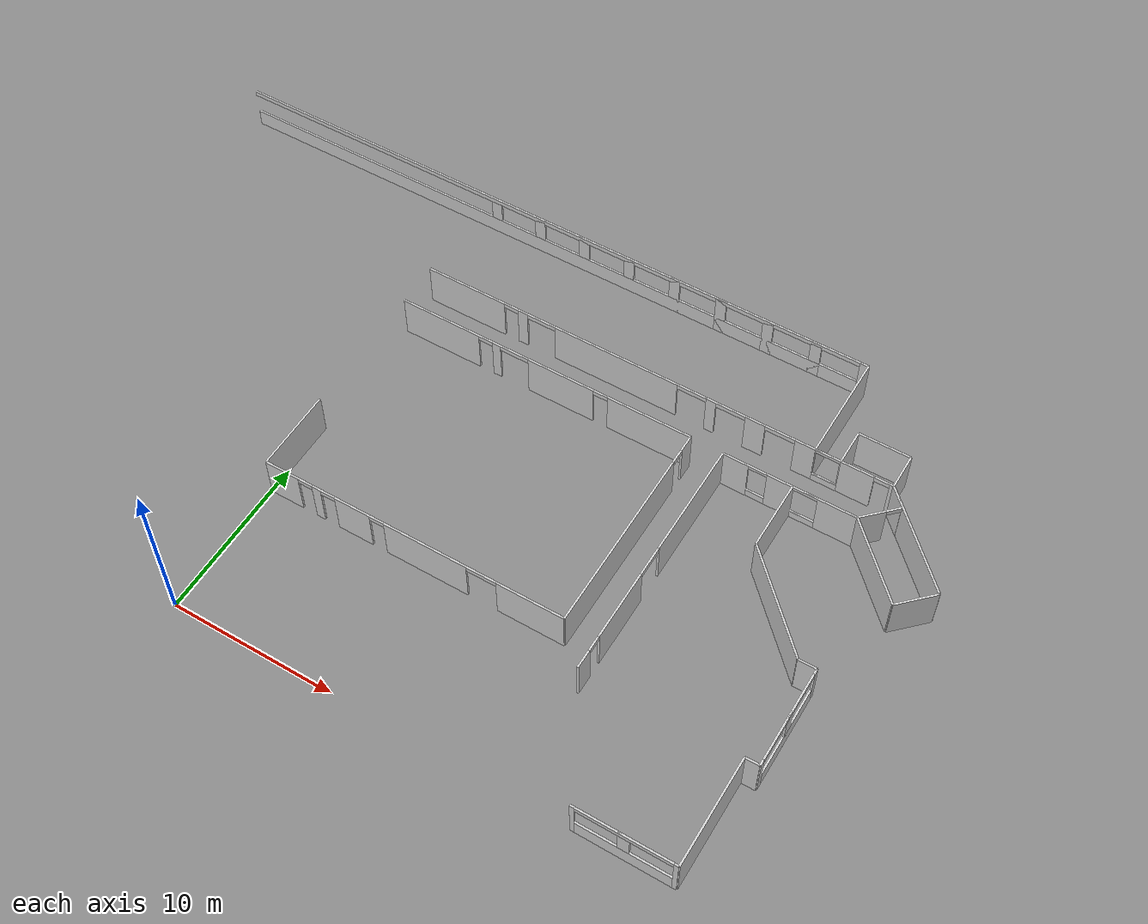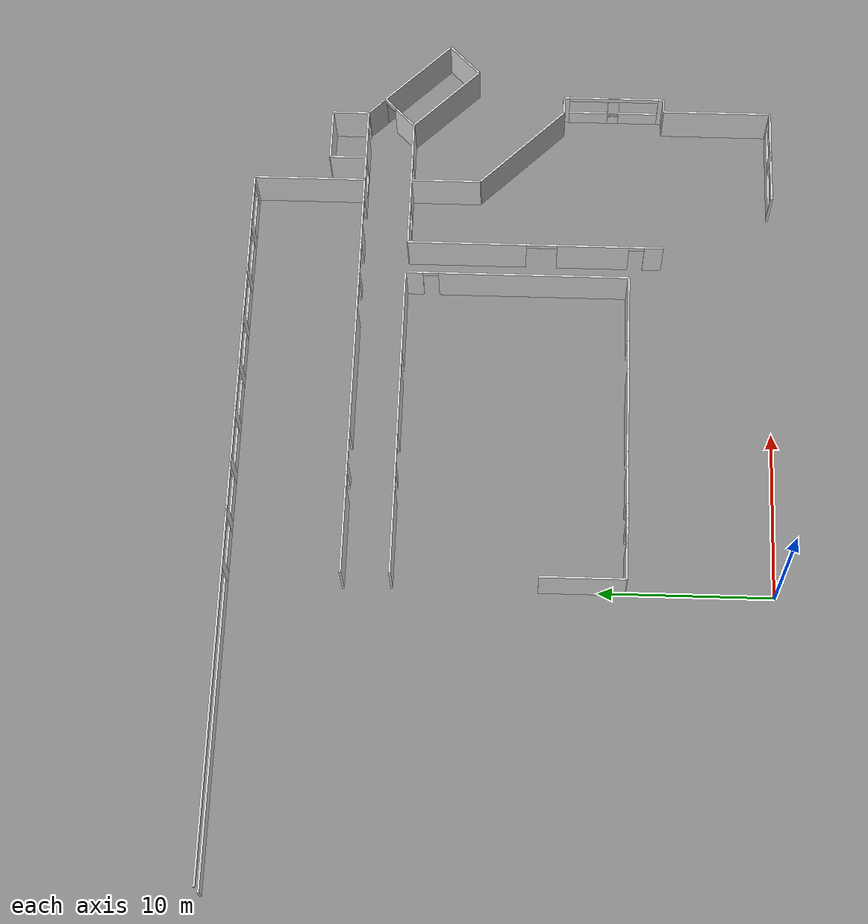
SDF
<sdf version="1.10">
 <model name="fourth_floor_walls">
  <static>true</static>
  <link name="exteriors_018_windows_block_lower_strip">
   <pose>3.3877 31.0451 0.5461 0 0 0.000000</pose>
   <collision name="exteriors_018_windows_block_lower_strip_collision">
    <geometry><box><size>41.9926 0.1199 1.0922</size></box></geometry>
   </collision>
   <visual name="exteriors_018_windows_block_lower_strip_visual">
    <geometry><box><size>41.9926 0.1199 1.0922</size></box></geometry>
    <material><ambient>0.82 0.82 0.82 1</ambient><diffuse>0.82 0.82 0.82 1</diffuse></material>
   </visual>
  </link>
  <link name="exteriors_018_windows_block_upper_strip">
   <pose>3.3877 31.0451 2.5942 0 0 0.000000</pose>
   <collision name="exteriors_018_windows_block_upper_strip_collision">
    <geometry><box><size>41.9926 0.1199 0.3117</size></box></geometry>
   </collision>
   <visual name="exteriors_018_windows_block_upper_strip_visual">
    <geometry><box><size>41.9926 0.1199 0.3117</size></box></geometry>
    <material><ambient>0.82 0.82 0.82 1</ambient><diffuse>0.82 0.82 0.82 1</diffuse></material>
   </visual>
  </link>
  <link name="exteriors_018_windows_block_post_6">
   <pose>0.3397 31.0451 1.3750 0 0 0.000000</pose>
   <collision name="exteriors_018_windows_block_post_6_collision">
    <geometry><box><size>0.6794 0.1199 2.7501</size></box></geometry>
   </collision>
   <visual name="exteriors_018_windows_block_post_6_visual">
    <geometry><box><size>0.6794 0.1199 2.7501</size></box></geometry>
    <material><ambient>0.82 0.82 0.82 1</ambient><diffuse>0.82 0.82 0.82 1</diffuse></material>
   </visual>
  </link>
  <link name="exteriors_018_windows_block_post_7">
   <pose>3.3877 31.0451 1.3750 0 0 0.000000</pose>
   <collision name="exteriors_018_windows_block_post_7_collision">
    <geometry><box><size>0.6794 0.1199 2.7501</size></box></geometry>
   </collision>
   <visual name="exteriors_018_windows_block_post_7_visual">
    <geometry><box><size>0.6794 0.1199 2.7501</size></box></geometry>
    <material><ambient>0.82 0.82 0.82 1</ambient><diffuse>0.82 0.82 0.82 1</diffuse></material>
   </visual>
  </link>
  <link name="exteriors_018_windows_block_post_8">
   <pose>6.4357 31.0451 1.3750 0 0 0.000000</pose>
   <collision name="exteriors_018_windows_block_post_8_collision">
    <geometry><box><size>0.6794 0.1199 2.7501</size></box></geometry>
   </collision>
   <visual name="exteriors_018_windows_block_post_8_visual">
    <geometry><box><size>0.6794 0.1199 2.7501</size></box></geometry>
    <material><ambient>0.82 0.82 0.82 1</ambient><diffuse>0.82 0.82 0.82 1</diffuse></material>
   </visual>
  </link>
  <link name="exteriors_018_windows_block_post_9">
   <pose>9.4837 31.0451 1.3750 0 0 0.000000</pose>
   <collision name="exteriors_018_windows_block_post_9_collision">
    <geometry><box><size>0.6794 0.1199 2.7501</size></box></geometry>
   </collision>
   <visual name="exteriors_018_windows_block_post_9_visual">
    <geometry><box><size>0.6794 0.1199 2.7501</size></box></geometry>
    <material><ambient>0.82 0.82 0.82 1</ambient><diffuse>0.82 0.82 0.82 1</diffuse></material>
   </visual>
  </link>
  <link name="exteriors_018_windows_block_post_10">
   <pose>12.5317 31.0451 1.3750 0 0 0.000000</pose>
   <collision name="exteriors_018_windows_block_post_10_collision">
    <geometry><box><size>0.6794 0.1199 2.7501</size></box></geometry>
   </collision>
   <visual name="exteriors_018_windows_block_post_10_visual">
    <geometry><box><size>0.6794 0.1199 2.7501</size></box></geometry>
    <material><ambient>0.82 0.82 0.82 1</ambient><diffuse>0.82 0.82 0.82 1</diffuse></material>
   </visual>
  </link>
  <link name="exteriors_018_windows_block_post_11">
   <pose>15.5797 31.0451 1.3750 0 0 0.000000</pose>
   <collision name="exteriors_018_windows_block_post_11_collision">
    <geometry><box><size>0.6794 0.1199 2.7501</size></box></geometry>
   </collision>
   <visual name="exteriors_018_windows_block_post_11_visual">
    <geometry><box><size>0.6794 0.1199 2.7501</size></box></geometry>
    <material><ambient>0.82 0.82 0.82 1</ambient><diffuse>0.82 0.82 0.82 1</diffuse></material>
   </visual>
  </link>
  <link name="exteriors_018_windows_block_post_12">
   <pose>18.6277 31.0451 1.3750 0 0 0.000000</pose>
   <collision name="exteriors_018_windows_block_post_12_collision">
    <geometry><box><size>0.6794 0.1199 2.7501</size></box></geometry>
   </collision>
   <visual name="exteriors_018_windows_block_post_12_visual">
    <geometry><box><size>0.6794 0.1199 2.7501</size></box></geometry>
    <material><ambient>0.82 0.82 0.82 1</ambient><diffuse>0.82 0.82 0.82 1</diffuse></material>
   </visual>
  </link>
  <link name="exteriors_018_windows_block_post_13">
   <pose>21.6757 31.0451 1.3750 0 0 0.000000</pose>
   <collision name="exteriors_018_windows_block_post_13_collision">
    <geometry><box><size>0.6794 0.1199 2.7501</size></box></geometry>
   </collision>
   <visual name="exteriors_018_windows_block_post_13_visual">
    <geometry><box><size>0.6794 0.1199 2.7501</size></box></geometry>
    <material><ambient>0.82 0.82 0.82 1</ambient><diffuse>0.82 0.82 0.82 1</diffuse></material>
   </visual>
  </link>
  <link name="exteriors_019_solid">
   <pose>24.6380 31.0451 1.3750 0 0 0.000000</pose>
   <collision name="exteriors_019_solid_collision">
    <geometry><box><size>0.5080 0.1199 2.7501</size></box></geometry>
   </collision>
   <visual name="exteriors_019_solid_visual">
    <geometry><box><size>0.5080 0.1199 2.7501</size></box></geometry>
    <material><ambient>0.82 0.82 0.82 1</ambient><diffuse>0.82 0.82 0.82 1</diffuse></material>
   </visual>
  </link>
  <link name="exteriors_021_solid">
   <pose>24.8920 27.7431 1.3750 0 0 4.712389</pose>
   <collision name="exteriors_021_solid_collision">
    <geometry><box><size>6.6040 0.1199 2.7501</size></box></geometry>
   </collision>
   <visual name="exteriors_021_solid_visual">
    <geometry><box><size>6.6040 0.1199 2.7501</size></box></geometry>
    <material><ambient>0.82 0.82 0.82 1</ambient><diffuse>0.82 0.82 0.82 1</diffuse></material>
   </visual>
  </link>
  <link name="exteriors_023_windows_block_lower_strip">
   <pose>25.6540 24.4412 0.2540 0 0 0.000000</pose>
   <collision name="exteriors_023_windows_block_lower_strip_collision">
    <geometry><box><size>1.5240 0.1199 0.5080</size></box></geometry>
   </collision>
   <visual name="exteriors_023_windows_block_lower_strip_visual">
    <geometry><box><size>1.5240 0.1199 0.5080</size></box></geometry>
    <material><ambient>0.82 0.82 0.82 1</ambient><diffuse>0.82 0.82 0.82 1</diffuse></material>
   </visual>
  </link>
  <link name="exteriors_023_windows_block_upper_strip">
   <pose>25.6540 24.4412 2.6450 0 0 0.000000</pose>
   <collision name="exteriors_023_windows_block_upper_strip_collision">
    <geometry><box><size>1.5240 0.1199 0.2101</size></box></geometry>
   </collision>
   <visual name="exteriors_023_windows_block_upper_strip_visual">
    <geometry><box><size>1.5240 0.1199 0.2101</size></box></geometry>
    <material><ambient>0.82 0.82 0.82 1</ambient><diffuse>0.82 0.82 0.82 1</diffuse></material>
   </visual>
  </link>
  <link name="exteriors_025_solid">
   <pose>26.4160 25.5206 1.3750 0 0 1.570796</pose>
   <collision name="exteriors_025_solid_collision">
    <geometry><box><size>2.1590 0.1199 2.7501</size></box></geometry>
   </collision>
   <visual name="exteriors_025_solid_visual">
    <geometry><box><size>2.1590 0.1199 2.7501</size></box></geometry>
    <material><ambient>0.82 0.82 0.82 1</ambient><diffuse>0.82 0.82 0.82 1</diffuse></material>
   </visual>
  </link>
  <link name="exteriors_027_solid">
   <pose>27.9781 26.6001 1.3750 0 0 0.000000</pose>
   <collision name="exteriors_027_solid_collision">
    <geometry><box><size>3.1242 0.1199 2.7501</size></box></geometry>
   </collision>
   <visual name="exteriors_027_solid_visual">
    <geometry><box><size>3.1242 0.1199 2.7501</size></box></geometry>
    <material><ambient>0.82 0.82 0.82 1</ambient><diffuse>0.82 0.82 0.82 1</diffuse></material>
   </visual>
  </link>
  <link name="exteriors_029_solid">
   <pose>29.5402 25.5206 1.3750 0 0 4.712389</pose>
   <collision name="exteriors_029_solid_collision">
    <geometry><box><size>2.1590 0.1199 2.7501</size></box></geometry>
   </collision>
   <visual name="exteriors_029_solid_visual">
    <geometry><box><size>2.1590 0.1199 2.7501</size></box></geometry>
    <material><ambient>0.82 0.82 0.82 1</ambient><diffuse>0.82 0.82 0.82 1</diffuse></material>
   </visual>
  </link>
  <link name="exteriors_031_solid">
   <pose>31.9649 22.0165 1.3750 0 0 5.497787</pose>
   <collision name="exteriors_031_solid_collision">
    <geometry><box><size>6.8580 0.1199 2.7501</size></box></geometry>
   </collision>
   <visual name="exteriors_031_solid_visual">
    <geometry><box><size>6.8580 0.1199 2.7501</size></box></geometry>
    <material><ambient>0.82 0.82 0.82 1</ambient><diffuse>0.82 0.82 0.82 1</diffuse></material>
   </visual>
  </link>
  <link name="exteriors_033_solid">
   <pose>33.4915 18.6938 1.3750 0 0 3.926991</pose>
   <collision name="exteriors_033_solid_collision">
    <geometry><box><size>2.5400 0.1199 2.7501</size></box></geometry>
   </collision>
   <visual name="exteriors_033_solid_visual">
    <geometry><box><size>2.5400 0.1199 2.7501</size></box></geometry>
    <material><ambient>0.82 0.82 0.82 1</ambient><diffuse>0.82 0.82 0.82 1</diffuse></material>
   </visual>
  </link>
  <link name="exteriors_035_solid">
   <pose>30.6717 19.7175 1.3750 0 0 2.356194</pose>
   <collision name="exteriors_035_solid_collision">
    <geometry><box><size>5.4356 0.1199 2.7501</size></box></geometry>
   </collision>
   <visual name="exteriors_035_solid_visual">
    <geometry><box><size>5.4356 0.1199 2.7501</size></box></geometry>
    <material><ambient>0.82 0.82 0.82 1</ambient><diffuse>0.82 0.82 0.82 1</diffuse></material>
   </visual>
  </link>
  <link name="exteriors_037_solid">
   <pose>27.6069 21.6393 1.3750 0 0 3.141593</pose>
   <collision name="exteriors_037_solid_collision">
    <geometry><box><size>2.2860 0.1199 2.7501</size></box></geometry>
   </collision>
   <visual name="exteriors_037_solid_visual">
    <geometry><box><size>2.2860 0.1199 2.7501</size></box></geometry>
    <material><ambient>0.82 0.82 0.82 1</ambient><diffuse>0.82 0.82 0.82 1</diffuse></material>
   </visual>
  </link>
  <link name="exteriors_038_windows_block_lower_strip">
   <pose>25.7019 21.6393 0.2540 0 0 3.141593</pose>
   <collision name="exteriors_038_windows_block_lower_strip_collision">
    <geometry><box><size>1.5240 0.1199 0.5080</size></box></geometry>
   </collision>
   <visual name="exteriors_038_windows_block_lower_strip_visual">
    <geometry><box><size>1.5240 0.1199 0.5080</size></box></geometry>
    <material><ambient>0.82 0.82 0.82 1</ambient><diffuse>0.82 0.82 0.82 1</diffuse></material>
   </visual>
  </link>
  <link name="exteriors_038_windows_block_upper_strip">
   <pose>25.7019 21.6393 2.6450 0 0 3.141593</pose>
   <collision name="exteriors_038_windows_block_upper_strip_collision">
    <geometry><box><size>1.5240 0.1199 0.2101</size></box></geometry>
   </collision>
   <visual name="exteriors_038_windows_block_upper_strip_visual">
    <geometry><box><size>1.5240 0.1199 0.2101</size></box></geometry>
    <material><ambient>0.82 0.82 0.82 1</ambient><diffuse>0.82 0.82 0.82 1</diffuse></material>
   </visual>
  </link>
  <link name="exteriors_040_solid">
   <pose>24.9399 19.5565 1.3750 0 0 4.712389</pose>
   <collision name="exteriors_040_solid_collision">
    <geometry><box><size>4.1656 0.1199 2.7501</size></box></geometry>
   </collision>
   <visual name="exteriors_040_solid_visual">
    <geometry><box><size>4.1656 0.1199 2.7501</size></box></geometry>
    <material><ambient>0.82 0.82 0.82 1</ambient><diffuse>0.82 0.82 0.82 1</diffuse></material>
   </visual>
  </link>
  <link name="exteriors_042_solid">
   <pose>27.4185 14.9952 1.3750 0 0 5.497787</pose>
   <collision name="exteriors_042_solid_collision">
    <geometry><box><size>7.0104 0.1199 2.7501</size></box></geometry>
   </collision>
   <visual name="exteriors_042_solid_visual">
    <geometry><box><size>7.0104 0.1199 2.7501</size></box></geometry>
    <material><ambient>0.82 0.82 0.82 1</ambient><diffuse>0.82 0.82 0.82 1</diffuse></material>
   </visual>
  </link>
  <link name="exteriors_044_solid">
   <pose>30.4304 12.5166 1.3750 0 0 0.000000</pose>
   <collision name="exteriors_044_solid_collision">
    <geometry><box><size>1.0668 0.1199 2.7501</size></box></geometry>
   </collision>
   <visual name="exteriors_044_solid_visual">
    <geometry><box><size>1.0668 0.1199 2.7501</size></box></geometry>
    <material><ambient>0.82 0.82 0.82 1</ambient><diffuse>0.82 0.82 0.82 1</diffuse></material>
   </visual>
  </link>
  <link name="exteriors_046_solid">
   <pose>30.9638 12.3515 1.3750 0 0 4.712389</pose>
   <collision name="exteriors_046_solid_collision">
    <geometry><box><size>0.3302 0.1199 2.7501</size></box></geometry>
   </collision>
   <visual name="exteriors_046_solid_visual">
    <geometry><box><size>0.3302 0.1199 2.7501</size></box></geometry>
    <material><ambient>0.82 0.82 0.82 1</ambient><diffuse>0.82 0.82 0.82 1</diffuse></material>
   </visual>
  </link>
  <link name="exteriors_047_windows_block_lower_strip">
   <pose>30.9638 9.4781 0.5461 0 0 4.712389</pose>
   <collision name="exteriors_047_windows_block_lower_strip_collision">
    <geometry><box><size>5.4165 0.1199 1.0922</size></box></geometry>
   </collision>
   <visual name="exteriors_047_windows_block_lower_strip_visual">
    <geometry><box><size>5.4165 0.1199 1.0922</size></box></geometry>
    <material><ambient>0.82 0.82 0.82 1</ambient><diffuse>0.82 0.82 0.82 1</diffuse></material>
   </visual>
  </link>
  <link name="exteriors_047_windows_block_upper_strip">
   <pose>30.9638 9.4781 2.5942 0 0 4.712389</pose>
   <collision name="exteriors_047_windows_block_upper_strip_collision">
    <geometry><box><size>5.4165 0.1199 0.3117</size></box></geometry>
   </collision>
   <visual name="exteriors_047_windows_block_upper_strip_visual">
    <geometry><box><size>5.4165 0.1199 0.3117</size></box></geometry>
    <material><ambient>0.82 0.82 0.82 1</ambient><diffuse>0.82 0.82 0.82 1</diffuse></material>
   </visual>
  </link>
  <link name="exteriors_047_windows_block_post_1">
   <pose>30.9638 9.4781 1.3750 0 0 4.712389</pose>
   <collision name="exteriors_047_windows_block_post_1_collision">
    <geometry><box><size>0.6794 0.1199 2.7501</size></box></geometry>
   </collision>
   <visual name="exteriors_047_windows_block_post_1_visual">
    <geometry><box><size>0.6794 0.1199 2.7501</size></box></geometry>
    <material><ambient>0.82 0.82 0.82 1</ambient><diffuse>0.82 0.82 0.82 1</diffuse></material>
   </visual>
  </link>
  <link name="exteriors_048_solid">
   <pose>30.9638 6.6048 1.3750 0 0 4.712389</pose>
   <collision name="exteriors_048_solid_collision">
    <geometry><box><size>0.3302 0.1199 2.7501</size></box></geometry>
   </collision>
   <visual name="exteriors_048_solid_visual">
    <geometry><box><size>0.3302 0.1199 2.7501</size></box></geometry>
    <material><ambient>0.82 0.82 0.82 1</ambient><diffuse>0.82 0.82 0.82 1</diffuse></material>
   </visual>
  </link>
  <link name="exteriors_050_solid">
   <pose>30.5447 6.4397 1.3750 0 0 3.141593</pose>
   <collision name="exteriors_050_solid_collision">
    <geometry><box><size>0.8382 0.1199 2.7501</size></box></geometry>
   </collision>
   <visual name="exteriors_050_solid_visual">
    <geometry><box><size>0.8382 0.1199 2.7501</size></box></geometry>
    <material><ambient>0.82 0.82 0.82 1</ambient><diffuse>0.82 0.82 0.82 1</diffuse></material>
   </visual>
  </link>
  <link name="exteriors_052_solid">
   <pose>30.1256 3.2139 1.3750 0 0 4.712389</pose>
   <collision name="exteriors_052_solid_collision">
    <geometry><box><size>6.4516 0.1199 2.7501</size></box></geometry>
   </collision>
   <visual name="exteriors_052_solid_visual">
    <geometry><box><size>6.4516 0.1199 2.7501</size></box></geometry>
    <material><ambient>0.82 0.82 0.82 1</ambient><diffuse>0.82 0.82 0.82 1</diffuse></material>
   </visual>
  </link>
  <link name="exteriors_054_solid">
   <pose>29.9986 -0.0119 1.3750 0 0 3.141593</pose>
   <collision name="exteriors_054_solid_collision">
    <geometry><box><size>0.2540 0.1199 2.7501</size></box></geometry>
   </collision>
   <visual name="exteriors_054_solid_visual">
    <geometry><box><size>0.2540 0.1199 2.7501</size></box></geometry>
    <material><ambient>0.82 0.82 0.82 1</ambient><diffuse>0.82 0.82 0.82 1</diffuse></material>
   </visual>
  </link>
  <link name="exteriors_055_windows_block_lower_strip">
   <pose>27.1634 -0.0119 0.5461 0 0 3.141593</pose>
   <collision name="exteriors_055_windows_block_lower_strip_collision">
    <geometry><box><size>5.4165 0.1199 1.0922</size></box></geometry>
   </collision>
   <visual name="exteriors_055_windows_block_lower_strip_visual">
    <geometry><box><size>5.4165 0.1199 1.0922</size></box></geometry>
    <material><ambient>0.82 0.82 0.82 1</ambient><diffuse>0.82 0.82 0.82 1</diffuse></material>
   </visual>
  </link>
  <link name="exteriors_055_windows_block_upper_strip">
   <pose>27.1634 -0.0119 2.5942 0 0 3.141593</pose>
   <collision name="exteriors_055_windows_block_upper_strip_collision">
    <geometry><box><size>5.4165 0.1199 0.3117</size></box></geometry>
   </collision>
   <visual name="exteriors_055_windows_block_upper_strip_visual">
    <geometry><box><size>5.4165 0.1199 0.3117</size></box></geometry>
    <material><ambient>0.82 0.82 0.82 1</ambient><diffuse>0.82 0.82 0.82 1</diffuse></material>
   </visual>
  </link>
  <link name="exteriors_055_windows_block_post_1">
   <pose>27.1634 -0.0119 1.3750 0 0 3.141593</pose>
   <collision name="exteriors_055_windows_block_post_1_collision">
    <geometry><box><size>0.6794 0.1199 2.7501</size></box></geometry>
   </collision>
   <visual name="exteriors_055_windows_block_post_1_visual">
    <geometry><box><size>0.6794 0.1199 2.7501</size></box></geometry>
    <material><ambient>0.82 0.82 0.82 1</ambient><diffuse>0.82 0.82 0.82 1</diffuse></material>
   </visual>
  </link>
  <link name="exteriors_056_solid">
   <pose>24.3281 -0.0119 1.3750 0 0 3.141593</pose>
   <collision name="exteriors_056_solid_collision">
    <geometry><box><size>0.2540 0.1199 2.7501</size></box></geometry>
   </collision>
   <visual name="exteriors_056_solid_visual">
    <geometry><box><size>0.2540 0.1199 2.7501</size></box></geometry>
    <material><ambient>0.82 0.82 0.82 1</ambient><diffuse>0.82 0.82 0.82 1</diffuse></material>
   </visual>
  </link>
  <link name="hallways_033_solid">
   <pose>2.5019 24.4399 1.3750 0 0 0.000000</pose>
   <collision name="hallways_033_solid_collision">
    <geometry><box><size>5.1308 0.1199 2.7501</size></box></geometry>
   </collision>
   <visual name="hallways_033_solid_visual">
    <geometry><box><size>5.1308 0.1199 2.7501</size></box></geometry>
    <material><ambient>0.82 0.82 0.82 1</ambient><diffuse>0.82 0.82 0.82 1</diffuse></material>
   </visual>
  </link>
  <link name="hallways_034_door_lintel">
   <pose>5.5245 24.4399 2.5942 0 0 0.000000</pose>
   <collision name="hallways_034_door_lintel_collision">
    <geometry><box><size>0.9144 0.1199 0.3117</size></box></geometry>
   </collision>
   <visual name="hallways_034_door_lintel_visual">
    <geometry><box><size>0.9144 0.1199 0.3117</size></box></geometry>
    <material><ambient>0.82 0.82 0.82 1</ambient><diffuse>0.82 0.82 0.82 1</diffuse></material>
   </visual>
  </link>
  <link name="hallways_035_solid">
   <pose>6.2992 24.4399 1.3750 0 0 0.000000</pose>
   <collision name="hallways_035_solid_collision">
    <geometry><box><size>0.6350 0.1199 2.7501</size></box></geometry>
   </collision>
   <visual name="hallways_035_solid_visual">
    <geometry><box><size>0.6350 0.1199 2.7501</size></box></geometry>
    <material><ambient>0.82 0.82 0.82 1</ambient><diffuse>0.82 0.82 0.82 1</diffuse></material>
   </visual>
  </link>
  <link name="hallways_036_door_lintel">
   <pose>7.5311 24.4399 2.5942 0 0 0.000000</pose>
   <collision name="hallways_036_door_lintel_collision">
    <geometry><box><size>1.8288 0.1199 0.3117</size></box></geometry>
   </collision>
   <visual name="hallways_036_door_lintel_visual">
    <geometry><box><size>1.8288 0.1199 0.3117</size></box></geometry>
    <material><ambient>0.82 0.82 0.82 1</ambient><diffuse>0.82 0.82 0.82 1</diffuse></material>
   </visual>
  </link>
  <link name="hallways_037_solid">
   <pose>12.4079 24.4399 1.3750 0 0 0.000000</pose>
   <collision name="hallways_037_solid_collision">
    <geometry><box><size>7.9248 0.1199 2.7501</size></box></geometry>
   </collision>
   <visual name="hallways_037_solid_visual">
    <geometry><box><size>7.9248 0.1199 2.7501</size></box></geometry>
    <material><ambient>0.82 0.82 0.82 1</ambient><diffuse>0.82 0.82 0.82 1</diffuse></material>
   </visual>
  </link>
  <link name="hallways_038_door_lintel">
   <pose>17.2847 24.4399 2.5942 0 0 0.000000</pose>
   <collision name="hallways_038_door_lintel_collision">
    <geometry><box><size>1.8288 0.1199 0.3117</size></box></geometry>
   </collision>
   <visual name="hallways_038_door_lintel_visual">
    <geometry><box><size>1.8288 0.1199 0.3117</size></box></geometry>
    <material><ambient>0.82 0.82 0.82 1</ambient><diffuse>0.82 0.82 0.82 1</diffuse></material>
   </visual>
  </link>
  <link name="hallways_039_solid">
   <pose>18.5039 24.4399 1.3750 0 0 0.000000</pose>
   <collision name="hallways_039_solid_collision">
    <geometry><box><size>0.6096 0.1199 2.7501</size></box></geometry>
   </collision>
   <visual name="hallways_039_solid_visual">
    <geometry><box><size>0.6096 0.1199 2.7501</size></box></geometry>
    <material><ambient>0.82 0.82 0.82 1</ambient><diffuse>0.82 0.82 0.82 1</diffuse></material>
   </visual>
  </link>
  <link name="hallways_040_door_lintel">
   <pose>19.7231 24.4399 2.5942 0 0 0.000000</pose>
   <collision name="hallways_040_door_lintel_collision">
    <geometry><box><size>1.8288 0.1199 0.3117</size></box></geometry>
   </collision>
   <visual name="hallways_040_door_lintel_visual">
    <geometry><box><size>1.8288 0.1199 0.3117</size></box></geometry>
    <material><ambient>0.82 0.82 0.82 1</ambient><diffuse>0.82 0.82 0.82 1</diffuse></material>
   </visual>
  </link>
  <link name="hallways_041_solid">
   <pose>21.2471 24.4399 1.3750 0 0 0.000000</pose>
   <collision name="hallways_041_solid_collision">
    <geometry><box><size>1.2192 0.1199 2.7501</size></box></geometry>
   </collision>
   <visual name="hallways_041_solid_visual">
    <geometry><box><size>1.2192 0.1199 2.7501</size></box></geometry>
    <material><ambient>0.82 0.82 0.82 1</ambient><diffuse>0.82 0.82 0.82 1</diffuse></material>
   </visual>
  </link>
  <link name="hallways_042_door_lintel">
   <pose>22.7711 24.4399 2.5942 0 0 0.000000</pose>
   <collision name="hallways_042_door_lintel_collision">
    <geometry><box><size>1.8288 0.1199 0.3117</size></box></geometry>
   </collision>
   <visual name="hallways_042_door_lintel_visual">
    <geometry><box><size>1.8288 0.1199 0.3117</size></box></geometry>
    <material><ambient>0.82 0.82 0.82 1</ambient><diffuse>0.82 0.82 0.82 1</diffuse></material>
   </visual>
  </link>
  <link name="hallways_043_solid">
   <pose>24.2951 24.4399 1.3750 0 0 0.000000</pose>
   <collision name="hallways_043_solid_collision">
    <geometry><box><size>1.2192 0.1199 2.7501</size></box></geometry>
   </collision>
   <visual name="hallways_043_solid_visual">
    <geometry><box><size>1.2192 0.1199 2.7501</size></box></geometry>
    <material><ambient>0.82 0.82 0.82 1</ambient><diffuse>0.82 0.82 0.82 1</diffuse></material>
   </visual>
  </link>
  <link name="hallways_044_windows_block_lower_strip">
   <pose>25.6667 24.4399 0.2540 0 0 0.000000</pose>
   <collision name="hallways_044_windows_block_lower_strip_collision">
    <geometry><box><size>1.5240 0.1199 0.5080</size></box></geometry>
   </collision>
   <visual name="hallways_044_windows_block_lower_strip_visual">
    <geometry><box><size>1.5240 0.1199 0.5080</size></box></geometry>
    <material><ambient>0.82 0.82 0.82 1</ambient><diffuse>0.82 0.82 0.82 1</diffuse></material>
   </visual>
  </link>
  <link name="hallways_044_windows_block_upper_strip">
   <pose>25.6667 24.4399 2.6450 0 0 0.000000</pose>
   <collision name="hallways_044_windows_block_upper_strip_collision">
    <geometry><box><size>1.5240 0.1199 0.2101</size></box></geometry>
   </collision>
   <visual name="hallways_044_windows_block_upper_strip_visual">
    <geometry><box><size>1.5240 0.1199 0.2101</size></box></geometry>
    <material><ambient>0.82 0.82 0.82 1</ambient><diffuse>0.82 0.82 0.82 1</diffuse></material>
   </visual>
  </link>
  <link name="hallways_045_solid">
   <pose>27.4193 24.4399 1.3750 0 0 0.000000</pose>
   <collision name="hallways_045_solid_collision">
    <geometry><box><size>1.9812 0.1199 2.7501</size></box></geometry>
   </collision>
   <visual name="hallways_045_solid_visual">
    <geometry><box><size>1.9812 0.1199 2.7501</size></box></geometry>
    <material><ambient>0.82 0.82 0.82 1</ambient><diffuse>0.82 0.82 0.82 1</diffuse></material>
   </visual>
  </link>
  <link name="hallways_046_door_lintel">
   <pose>28.8671 24.4399 2.5942 0 0 0.000000</pose>
   <collision name="hallways_046_door_lintel_collision">
    <geometry><box><size>0.9144 0.1199 0.3117</size></box></geometry>
   </collision>
   <visual name="hallways_046_door_lintel_visual">
    <geometry><box><size>0.9144 0.1199 0.3117</size></box></geometry>
    <material><ambient>0.82 0.82 0.82 1</ambient><diffuse>0.82 0.82 0.82 1</diffuse></material>
   </visual>
  </link>
  <link name="hallways_047_solid">
   <pose>29.4259 24.4399 1.3750 0 0 0.000000</pose>
   <collision name="hallways_047_solid_collision">
    <geometry><box><size>0.2032 0.1199 2.7501</size></box></geometry>
   </collision>
   <visual name="hallways_047_solid_visual">
    <geometry><box><size>0.2032 0.1199 2.7501</size></box></geometry>
    <material><ambient>0.82 0.82 0.82 1</ambient><diffuse>0.82 0.82 0.82 1</diffuse></material>
   </visual>
  </link>
  <link name="hallways_049_solid">
   <pose>30.0304 23.9370 1.3750 0 0 5.497787</pose>
   <collision name="hallways_049_solid_collision">
    <geometry><box><size>1.4224 0.1199 2.7501</size></box></geometry>
   </collision>
   <visual name="hallways_049_solid_visual">
    <geometry><box><size>1.4224 0.1199 2.7501</size></box></geometry>
    <material><ambient>0.82 0.82 0.82 1</ambient><diffuse>0.82 0.82 0.82 1</diffuse></material>
   </visual>
  </link>
  <link name="hallways_051_door_lintel">
   <pose>30.2100 23.1108 2.5942 0 0 3.926991</pose>
   <collision name="hallways_051_door_lintel_collision">
    <geometry><box><size>0.9144 0.1199 0.3117</size></box></geometry>
   </collision>
   <visual name="hallways_051_door_lintel_visual">
    <geometry><box><size>0.9144 0.1199 0.3117</size></box></geometry>
    <material><ambient>0.82 0.82 0.82 1</ambient><diffuse>0.82 0.82 0.82 1</diffuse></material>
   </visual>
  </link>
  <link name="hallways_052_solid">
   <pose>29.3120 22.2128 1.3750 0 0 3.926991</pose>
   <collision name="hallways_052_solid_collision">
    <geometry><box><size>1.6256 0.1199 2.7501</size></box></geometry>
   </collision>
   <visual name="hallways_052_solid_visual">
    <geometry><box><size>1.6256 0.1199 2.7501</size></box></geometry>
    <material><ambient>0.82 0.82 0.82 1</ambient><diffuse>0.82 0.82 0.82 1</diffuse></material>
   </visual>
  </link>
  <link name="hallways_054_solid">
   <pose>27.5942 21.6380 1.3750 0 0 3.141593</pose>
   <collision name="hallways_054_solid_collision">
    <geometry><box><size>2.2860 0.1199 2.7501</size></box></geometry>
   </collision>
   <visual name="hallways_054_solid_visual">
    <geometry><box><size>2.2860 0.1199 2.7501</size></box></geometry>
    <material><ambient>0.82 0.82 0.82 1</ambient><diffuse>0.82 0.82 0.82 1</diffuse></material>
   </visual>
  </link>
  <link name="hallways_055_windows_block_lower_strip">
   <pose>25.6892 21.6380 0.2540 0 0 3.141593</pose>
   <collision name="hallways_055_windows_block_lower_strip_collision">
    <geometry><box><size>1.5240 0.1199 0.5080</size></box></geometry>
   </collision>
   <visual name="hallways_055_windows_block_lower_strip_visual">
    <geometry><box><size>1.5240 0.1199 0.5080</size></box></geometry>
    <material><ambient>0.82 0.82 0.82 1</ambient><diffuse>0.82 0.82 0.82 1</diffuse></material>
   </visual>
  </link>
  <link name="hallways_055_windows_block_upper_strip">
   <pose>25.6892 21.6380 2.6450 0 0 3.141593</pose>
   <collision name="hallways_055_windows_block_upper_strip_collision">
    <geometry><box><size>1.5240 0.1199 0.2101</size></box></geometry>
   </collision>
   <visual name="hallways_055_windows_block_upper_strip_visual">
    <geometry><box><size>1.5240 0.1199 0.2101</size></box></geometry>
    <material><ambient>0.82 0.82 0.82 1</ambient><diffuse>0.82 0.82 0.82 1</diffuse></material>
   </visual>
  </link>
  <link name="hallways_056_solid">
   <pose>24.1779 21.6380 1.3750 0 0 3.141593</pose>
   <collision name="hallways_056_solid_collision">
    <geometry><box><size>1.4986 0.1199 2.7501</size></box></geometry>
   </collision>
   <visual name="hallways_056_solid_visual">
    <geometry><box><size>1.4986 0.1199 2.7501</size></box></geometry>
    <material><ambient>0.82 0.82 0.82 1</ambient><diffuse>0.82 0.82 0.82 1</diffuse></material>
   </visual>
  </link>
  <link name="hallways_057_windows_block_lower_strip">
   <pose>22.8698 21.6380 0.2540 0 0 3.141593</pose>
   <collision name="hallways_057_windows_block_lower_strip_collision">
    <geometry><box><size>1.1176 0.1199 0.5080</size></box></geometry>
   </collision>
   <visual name="hallways_057_windows_block_lower_strip_visual">
    <geometry><box><size>1.1176 0.1199 0.5080</size></box></geometry>
    <material><ambient>0.82 0.82 0.82 1</ambient><diffuse>0.82 0.82 0.82 1</diffuse></material>
   </visual>
  </link>
  <link name="hallways_057_windows_block_upper_strip">
   <pose>22.8698 21.6380 2.6450 0 0 3.141593</pose>
   <collision name="hallways_057_windows_block_upper_strip_collision">
    <geometry><box><size>1.1176 0.1199 0.2101</size></box></geometry>
   </collision>
   <visual name="hallways_057_windows_block_upper_strip_visual">
    <geometry><box><size>1.1176 0.1199 0.2101</size></box></geometry>
    <material><ambient>0.82 0.82 0.82 1</ambient><diffuse>0.82 0.82 0.82 1</diffuse></material>
   </visual>
  </link>
  <link name="hallways_058_solid">
   <pose>21.5236 21.6380 1.3750 0 0 3.141593</pose>
   <collision name="hallways_058_solid_collision">
    <geometry><box><size>1.5748 0.1199 2.7501</size></box></geometry>
   </collision>
   <visual name="hallways_058_solid_visual">
    <geometry><box><size>1.5748 0.1199 2.7501</size></box></geometry>
    <material><ambient>0.82 0.82 0.82 1</ambient><diffuse>0.82 0.82 0.82 1</diffuse></material>
   </visual>
  </link>
  <link name="hallways_060_solid">
   <pose>20.7362 18.1201 1.3750 0 0 4.712389</pose>
   <collision name="hallways_060_solid_collision">
    <geometry><box><size>7.0358 0.1199 2.7501</size></box></geometry>
   </collision>
   <visual name="hallways_060_solid_visual">
    <geometry><box><size>7.0358 0.1199 2.7501</size></box></geometry>
    <material><ambient>0.82 0.82 0.82 1</ambient><diffuse>0.82 0.82 0.82 1</diffuse></material>
   </visual>
  </link>
  <link name="hallways_061_door_lintel">
   <pose>20.7362 13.6878 2.5942 0 0 4.712389</pose>
   <collision name="hallways_061_door_lintel_collision">
    <geometry><box><size>1.8288 0.1199 0.3117</size></box></geometry>
   </collision>
   <visual name="hallways_061_door_lintel_visual">
    <geometry><box><size>1.8288 0.1199 0.3117</size></box></geometry>
    <material><ambient>0.82 0.82 0.82 1</ambient><diffuse>0.82 0.82 0.82 1</diffuse></material>
   </visual>
  </link>
  <link name="hallways_062_solid">
   <pose>20.7362 10.6398 1.3750 0 0 4.712389</pose>
   <collision name="hallways_062_solid_collision">
    <geometry><box><size>4.2672 0.1199 2.7501</size></box></geometry>
   </collision>
   <visual name="hallways_062_solid_visual">
    <geometry><box><size>4.2672 0.1199 2.7501</size></box></geometry>
    <material><ambient>0.82 0.82 0.82 1</ambient><diffuse>0.82 0.82 0.82 1</diffuse></material>
   </visual>
  </link>
  <link name="hallways_063_door_lintel">
   <pose>20.7362 8.0490 2.5942 0 0 4.712389</pose>
   <collision name="hallways_063_door_lintel_collision">
    <geometry><box><size>0.9144 0.1199 0.3117</size></box></geometry>
   </collision>
   <visual name="hallways_063_door_lintel_visual">
    <geometry><box><size>0.9144 0.1199 0.3117</size></box></geometry>
    <material><ambient>0.82 0.82 0.82 1</ambient><diffuse>0.82 0.82 0.82 1</diffuse></material>
   </visual>
  </link>
  <link name="hallways_064_solid">
   <pose>20.7362 7.0330 1.3750 0 0 4.712389</pose>
   <collision name="hallways_064_solid_collision">
    <geometry><box><size>1.1176 0.1199 2.7501</size></box></geometry>
   </collision>
   <visual name="hallways_064_solid_visual">
    <geometry><box><size>1.1176 0.1199 2.7501</size></box></geometry>
    <material><ambient>0.82 0.82 0.82 1</ambient><diffuse>0.82 0.82 0.82 1</diffuse></material>
   </visual>
  </link>
  <link name="inner_walls_1_001_solid">
   <pose>1.0636 8.5090 1.3750 0 0 0.000000</pose>
   <collision name="inner_walls_1_001_solid_collision">
    <geometry><box><size>2.1273 0.1199 2.7501</size></box></geometry>
   </collision>
   <visual name="inner_walls_1_001_solid_visual">
    <geometry><box><size>2.1273 0.1199 2.7501</size></box></geometry>
    <material><ambient>0.82 0.82 0.82 1</ambient><diffuse>0.82 0.82 0.82 1</diffuse></material>
   </visual>
  </link>
  <link name="inner_walls_1_002_door_lintel">
   <pose>2.5844 8.5090 2.5942 0 0 0.000000</pose>
   <collision name="inner_walls_1_002_door_lintel_collision">
    <geometry><box><size>0.9144 0.1199 0.3117</size></box></geometry>
   </collision>
   <visual name="inner_walls_1_002_door_lintel_visual">
    <geometry><box><size>0.9144 0.1199 0.3117</size></box></geometry>
    <material><ambient>0.82 0.82 0.82 1</ambient><diffuse>0.82 0.82 0.82 1</diffuse></material>
   </visual>
  </link>
  <link name="inner_walls_1_003_solid">
   <pose>3.3211 8.5090 1.3750 0 0 0.000000</pose>
   <collision name="inner_walls_1_003_solid_collision">
    <geometry><box><size>0.5588 0.1199 2.7501</size></box></geometry>
   </collision>
   <visual name="inner_walls_1_003_solid_visual">
    <geometry><box><size>0.5588 0.1199 2.7501</size></box></geometry>
    <material><ambient>0.82 0.82 0.82 1</ambient><diffuse>0.82 0.82 0.82 1</diffuse></material>
   </visual>
  </link>
  <link name="inner_walls_1_004_door_lintel">
   <pose>4.0576 8.5090 2.5942 0 0 0.000000</pose>
   <collision name="inner_walls_1_004_door_lintel_collision">
    <geometry><box><size>0.9144 0.1199 0.3117</size></box></geometry>
   </collision>
   <visual name="inner_walls_1_004_door_lintel_visual">
    <geometry><box><size>0.9144 0.1199 0.3117</size></box></geometry>
    <material><ambient>0.82 0.82 0.82 1</ambient><diffuse>0.82 0.82 0.82 1</diffuse></material>
   </visual>
  </link>
  <link name="inner_walls_1_005_solid">
   <pose>5.6261 8.5090 1.3750 0 0 0.000000</pose>
   <collision name="inner_walls_1_005_solid_collision">
    <geometry><box><size>2.2225 0.1199 2.7501</size></box></geometry>
   </collision>
   <visual name="inner_walls_1_005_solid_visual">
    <geometry><box><size>2.2225 0.1199 2.7501</size></box></geometry>
    <material><ambient>0.82 0.82 0.82 1</ambient><diffuse>0.82 0.82 0.82 1</diffuse></material>
   </visual>
  </link>
  <link name="inner_walls_1_006_door_lintel">
   <pose>7.1945 8.5090 2.5942 0 0 0.000000</pose>
   <collision name="inner_walls_1_006_door_lintel_collision">
    <geometry><box><size>0.9144 0.1199 0.3117</size></box></geometry>
   </collision>
   <visual name="inner_walls_1_006_door_lintel_visual">
    <geometry><box><size>0.9144 0.1199 0.3117</size></box></geometry>
    <material><ambient>0.82 0.82 0.82 1</ambient><diffuse>0.82 0.82 0.82 1</diffuse></material>
   </visual>
  </link>
  <link name="inner_walls_1_007_solid">
   <pose>10.2298 8.5090 1.3750 0 0 0.000000</pose>
   <collision name="inner_walls_1_007_solid_collision">
    <geometry><box><size>5.1562 0.1199 2.7501</size></box></geometry>
   </collision>
   <visual name="inner_walls_1_007_solid_visual">
    <geometry><box><size>5.1562 0.1199 2.7501</size></box></geometry>
    <material><ambient>0.82 0.82 0.82 1</ambient><diffuse>0.82 0.82 0.82 1</diffuse></material>
   </visual>
  </link>
  <link name="inner_walls_1_008_door_lintel">
   <pose>13.7223 8.5090 2.5942 0 0 0.000000</pose>
   <collision name="inner_walls_1_008_door_lintel_collision">
    <geometry><box><size>1.8288 0.1199 0.3117</size></box></geometry>
   </collision>
   <visual name="inner_walls_1_008_door_lintel_visual">
    <geometry><box><size>1.8288 0.1199 0.3117</size></box></geometry>
    <material><ambient>0.82 0.82 0.82 1</ambient><diffuse>0.82 0.82 0.82 1</diffuse></material>
   </visual>
  </link>
  <link name="inner_walls_1_009_solid">
   <pose>16.6814 8.5090 1.3750 0 0 0.000000</pose>
   <collision name="inner_walls_1_009_solid_collision">
    <geometry><box><size>4.0894 0.1199 2.7501</size></box></geometry>
   </collision>
   <visual name="inner_walls_1_009_solid_visual">
    <geometry><box><size>4.0894 0.1199 2.7501</size></box></geometry>
    <material><ambient>0.82 0.82 0.82 1</ambient><diffuse>0.82 0.82 0.82 1</diffuse></material>
   </visual>
  </link>
  <link name="inner_walls_1_011_solid">
   <pose>18.7262 14.1224 1.3750 0 0 1.570796</pose>
   <collision name="inner_walls_1_011_solid_collision">
    <geometry><box><size>11.2268 0.1199 2.7501</size></box></geometry>
   </collision>
   <visual name="inner_walls_1_011_solid_visual">
    <geometry><box><size>11.2268 0.1199 2.7501</size></box></geometry>
    <material><ambient>0.82 0.82 0.82 1</ambient><diffuse>0.82 0.82 0.82 1</diffuse></material>
   </visual>
  </link>
  <link name="inner_walls_1_012_door_lintel">
   <pose>18.7262 20.1930 2.5942 0 0 1.570796</pose>
   <collision name="inner_walls_1_012_door_lintel_collision">
    <geometry><box><size>0.9144 0.1199 0.3117</size></box></geometry>
   </collision>
   <visual name="inner_walls_1_012_door_lintel_visual">
    <geometry><box><size>0.9144 0.1199 0.3117</size></box></geometry>
    <material><ambient>0.82 0.82 0.82 1</ambient><diffuse>0.82 0.82 0.82 1</diffuse></material>
   </visual>
  </link>
  <link name="inner_walls_1_013_solid">
   <pose>18.7262 21.1709 1.3750 0 0 1.570796</pose>
   <collision name="inner_walls_1_013_solid_collision">
    <geometry><box><size>1.0414 0.1199 2.7501</size></box></geometry>
   </collision>
   <visual name="inner_walls_1_013_solid_visual">
    <geometry><box><size>1.0414 0.1199 2.7501</size></box></geometry>
    <material><ambient>0.82 0.82 0.82 1</ambient><diffuse>0.82 0.82 0.82 1</diffuse></material>
   </visual>
  </link>
  <link name="inner_walls_1_015_solid">
   <pose>16.1227 21.6916 1.3750 0 0 3.141593</pose>
   <collision name="inner_walls_1_015_solid_collision">
    <geometry><box><size>5.2070 0.1199 2.7501</size></box></geometry>
   </collision>
   <visual name="inner_walls_1_015_solid_visual">
    <geometry><box><size>5.2070 0.1199 2.7501</size></box></geometry>
    <material><ambient>0.82 0.82 0.82 1</ambient><diffuse>0.82 0.82 0.82 1</diffuse></material>
   </visual>
  </link>
  <link name="inner_walls_1_016_door_lintel">
   <pose>13.0619 21.6916 2.5942 0 0 3.141593</pose>
   <collision name="inner_walls_1_016_door_lintel_collision">
    <geometry><box><size>0.9144 0.1199 0.3117</size></box></geometry>
   </collision>
   <visual name="inner_walls_1_016_door_lintel_visual">
    <geometry><box><size>0.9144 0.1199 0.3117</size></box></geometry>
    <material><ambient>0.82 0.82 0.82 1</ambient><diffuse>0.82 0.82 0.82 1</diffuse></material>
   </visual>
  </link>
  <link name="inner_walls_1_017_solid">
   <pose>10.4839 21.6916 1.3750 0 0 3.141593</pose>
   <collision name="inner_walls_1_017_solid_collision">
    <geometry><box><size>4.2418 0.1199 2.7501</size></box></geometry>
   </collision>
   <visual name="inner_walls_1_017_solid_visual">
    <geometry><box><size>4.2418 0.1199 2.7501</size></box></geometry>
    <material><ambient>0.82 0.82 0.82 1</ambient><diffuse>0.82 0.82 0.82 1</diffuse></material>
   </visual>
  </link>
  <link name="inner_walls_1_018_door_lintel">
   <pose>7.4486 21.6916 2.5942 0 0 3.141593</pose>
   <collision name="inner_walls_1_018_door_lintel_collision">
    <geometry><box><size>1.8288 0.1199 0.3117</size></box></geometry>
   </collision>
   <visual name="inner_walls_1_018_door_lintel_visual">
    <geometry><box><size>1.8288 0.1199 0.3117</size></box></geometry>
    <material><ambient>0.82 0.82 0.82 1</ambient><diffuse>0.82 0.82 0.82 1</diffuse></material>
   </visual>
  </link>
  <link name="inner_walls_1_019_solid">
   <pose>6.2675 21.6916 1.3750 0 0 3.141593</pose>
   <collision name="inner_walls_1_019_solid_collision">
    <geometry><box><size>0.5334 0.1199 2.7501</size></box></geometry>
   </collision>
   <visual name="inner_walls_1_019_solid_visual">
    <geometry><box><size>0.5334 0.1199 2.7501</size></box></geometry>
    <material><ambient>0.82 0.82 0.82 1</ambient><diffuse>0.82 0.82 0.82 1</diffuse></material>
   </visual>
  </link>
  <link name="inner_walls_1_020_door_lintel">
   <pose>5.5435 21.6916 2.5942 0 0 3.141593</pose>
   <collision name="inner_walls_1_020_door_lintel_collision">
    <geometry><box><size>0.9144 0.1199 0.3117</size></box></geometry>
   </collision>
   <visual name="inner_walls_1_020_door_lintel_visual">
    <geometry><box><size>0.9144 0.1199 0.3117</size></box></geometry>
    <material><ambient>0.82 0.82 0.82 1</ambient><diffuse>0.82 0.82 0.82 1</diffuse></material>
   </visual>
  </link>
  <link name="inner_walls_1_021_solid">
   <pose>2.5463 21.6916 1.3750 0 0 3.141593</pose>
   <collision name="inner_walls_1_021_solid_collision">
    <geometry><box><size>5.0800 0.1199 2.7501</size></box></geometry>
   </collision>
   <visual name="inner_walls_1_021_solid_visual">
    <geometry><box><size>5.0800 0.1199 2.7501</size></box></geometry>
    <material><ambient>0.82 0.82 0.82 1</ambient><diffuse>0.82 0.82 0.82 1</diffuse></material>
   </visual>
  </link>
  <link name="inner_walls_1_027_solid">
   <pose>0.0063 10.9601 1.3750 0 0 4.712389</pose>
   <collision name="inner_walls_1_027_solid_collision">
    <geometry><box><size>4.9022 0.1199 2.7501</size></box></geometry>
   </collision>
   <visual name="inner_walls_1_027_solid_visual">
    <geometry><box><size>4.9022 0.1199 2.7501</size></box></geometry>
    <material><ambient>0.82 0.82 0.82 1</ambient><diffuse>0.82 0.82 0.82 1</diffuse></material>
   </visual>
  </link>
 </model>
</sdf>
